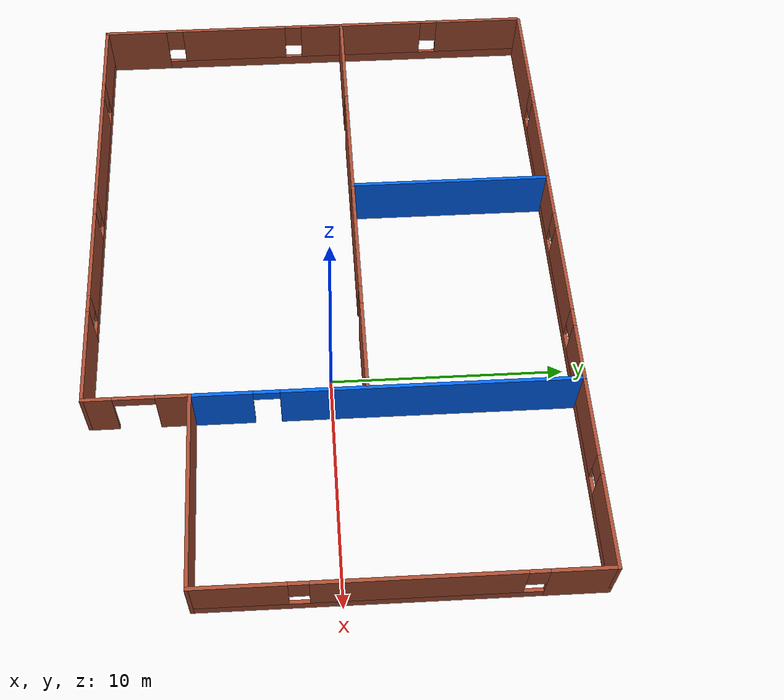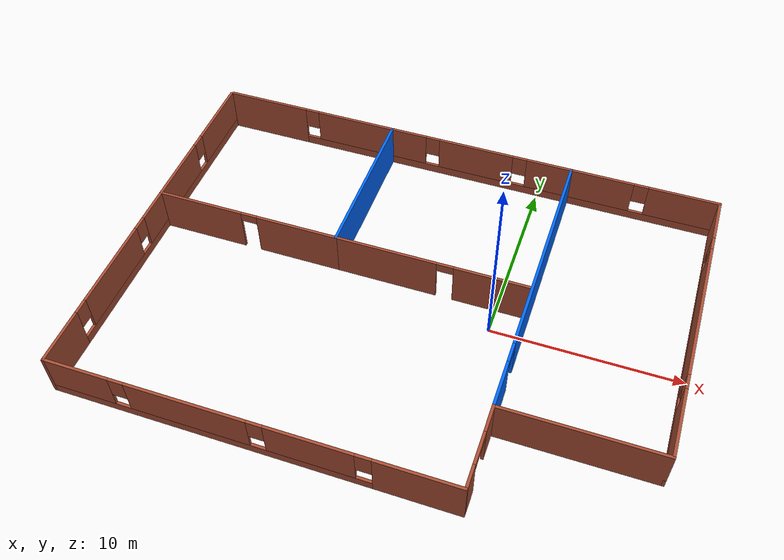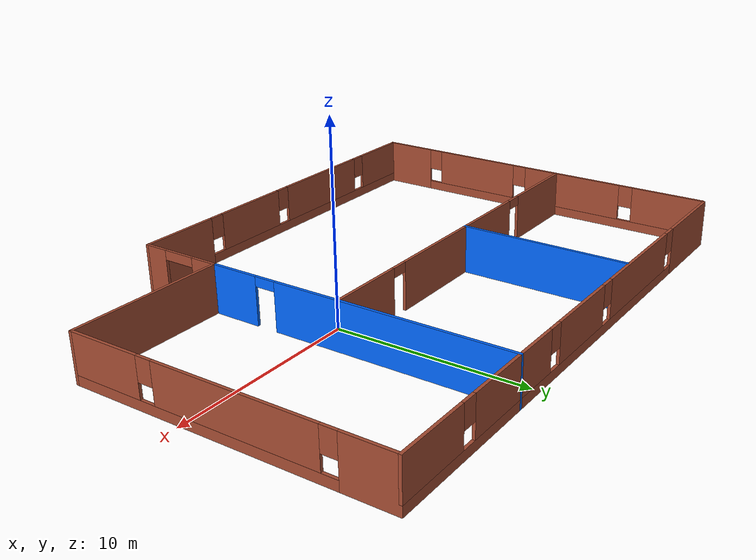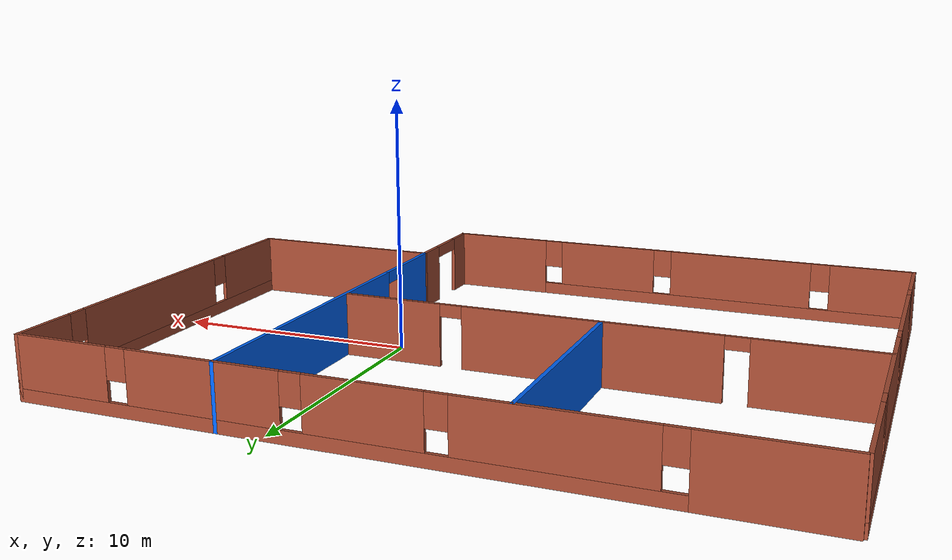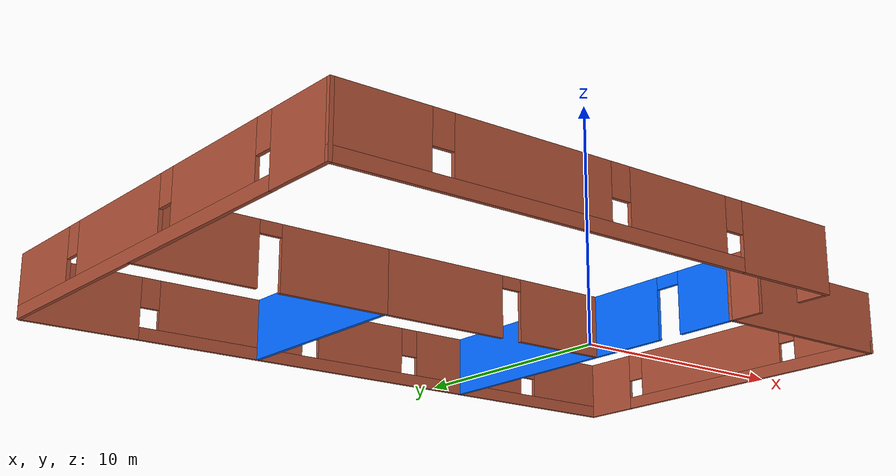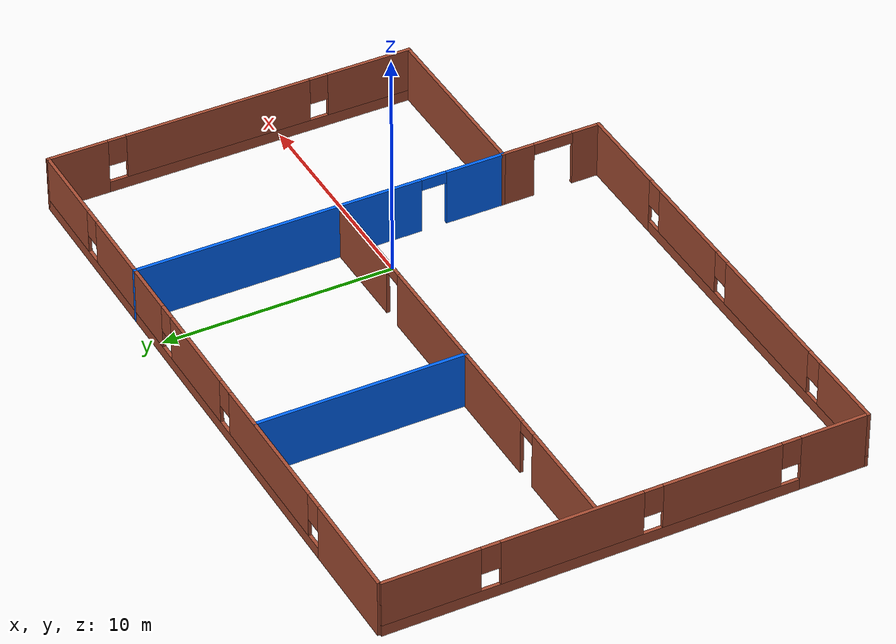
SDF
<?xml version='1.0'?>
<sdf version='1.6'>
  <model name='building'>
    <pose frame=''>-4.55811 0.061328 0 0 -0 0</pose>
    <link name='Wall_13'>
      <pose frame=''>0.05 10.225 0 0 -0 0</pose>
      <visual name='Wall_13_Visual_0'>
        <pose frame=''>-11.9914 0 1.25 0 -0 0</pose>
        <geometry>
          <box>
            <size>4.7672 0.15 2.5</size>
          </box>
        </geometry>
        <material>
          <script>
            <uri>file://media/materials/scripts/gazebo.material</uri>
            <name>Gazebo/Bricks</name>
          </script>
          <ambient>1 1 1 1</ambient>
        </material>
        <meta>
          <layer>0</layer>
        </meta>
      </visual>
      <collision name='Wall_13_Collision_0'>
        <geometry>
          <box>
            <size>4.7672 0.15 2.5</size>
          </box>
        </geometry>
        <pose frame=''>-11.9914 0 1.25 0 -0 0</pose>
      </collision>
      <visual name='Wall_13_Visual_1'>
        <pose frame=''>2.3836 0 0.25 0 -0 0</pose>
        <geometry>
          <box>
            <size>23.9828 0.15 0.5</size>
          </box>
        </geometry>
        <material>
          <script>
            <uri>file://media/materials/scripts/gazebo.material</uri>
            <name>Gazebo/Bricks</name>
          </script>
          <ambient>1 1 1 1</ambient>
        </material>
        <meta>
          <layer>0</layer>
        </meta>
      </visual>
      <collision name='Wall_13_Collision_1'>
        <geometry>
          <box>
            <size>23.9828 0.15 0.5</size>
          </box>
        </geometry>
        <pose frame=''>2.3836 0 0.25 0 -0 0</pose>
      </collision>
      <visual name='Wall_13_Visual_2'>
        <pose frame=''>-5.50611 0 1.5 0 -0 0</pose>
        <geometry>
          <box>
            <size>6.60337 0.15 2</size>
          </box>
        </geometry>
        <material>
          <script>
            <uri>file://media/materials/scripts/gazebo.material</uri>
            <name>Gazebo/Bricks</name>
          </script>
          <ambient>1 1 1 1</ambient>
        </material>
        <meta>
          <layer>0</layer>
        </meta>
      </visual>
      <collision name='Wall_13_Collision_2'>
        <geometry>
          <box>
            <size>6.60337 0.15 2</size>
          </box>
        </geometry>
        <pose frame=''>-5.50611 0 1.5 0 -0 0</pose>
      </collision>
      <visual name='Wall_13_Visual_3'>
        <pose frame=''>0.744274 0 1.5 0 -0 0</pose>
        <geometry>
          <box>
            <size>4.2974 0.15 2</size>
          </box>
        </geometry>
        <material>
          <script>
            <uri>file://media/materials/scripts/gazebo.material</uri>
            <name>Gazebo/Bricks</name>
          </script>
          <ambient>1 1 1 1</ambient>
        </material>
        <meta>
          <layer>0</layer>
        </meta>
      </visual>
      <collision name='Wall_13_Collision_3'>
        <geometry>
          <box>
            <size>4.2974 0.15 2</size>
          </box>
        </geometry>
        <pose frame=''>0.744274 0 1.5 0 -0 0</pose>
      </collision>
      <visual name='Wall_13_Visual_4'>
        <pose frame=''>6.69124 0 1.5 0 -0 0</pose>
        <geometry>
          <box>
            <size>5.99654 0.15 2</size>
          </box>
        </geometry>
        <material>
          <script>
            <uri>file://media/materials/scripts/gazebo.material</uri>
            <name>Gazebo/Bricks</name>
          </script>
          <ambient>1 1 1 1</ambient>
        </material>
        <meta>
          <layer>0</layer>
        </meta>
      </visual>
      <collision name='Wall_13_Collision_4'>
        <geometry>
          <box>
            <size>5.99654 0.15 2</size>
          </box>
        </geometry>
        <pose frame=''>6.69124 0 1.5 0 -0 0</pose>
      </collision>
      <visual name='Wall_13_Visual_5'>
        <pose frame=''>12.4323 0 1.5 0 -0 0</pose>
        <geometry>
          <box>
            <size>3.88549 0.15 2</size>
          </box>
        </geometry>
        <material>
          <script>
            <uri>file://media/materials/scripts/gazebo.material</uri>
            <name>Gazebo/Bricks</name>
          </script>
          <ambient>1 1 1 1</ambient>
        </material>
        <meta>
          <layer>0</layer>
        </meta>
      </visual>
      <collision name='Wall_13_Collision_5'>
        <geometry>
          <box>
            <size>3.88549 0.15 2</size>
          </box>
        </geometry>
        <pose frame=''>12.4323 0 1.5 0 -0 0</pose>
      </collision>
      <visual name='Wall_13_Visual_6'>
        <pose frame=''>-9.2078 0 1.9 0 -0 0</pose>
        <geometry>
          <box>
            <size>0.8 0.15 1.2</size>
          </box>
        </geometry>
        <material>
          <script>
            <uri>file://media/materials/scripts/gazebo.material</uri>
            <name>Gazebo/Bricks</name>
          </script>
          <ambient>1 1 1 1</ambient>
        </material>
        <meta>
          <layer>0</layer>
        </meta>
      </visual>
      <collision name='Wall_13_Collision_6'>
        <geometry>
          <box>
            <size>0.8 0.15 1.2</size>
          </box>
        </geometry>
        <pose frame=''>-9.2078 0 1.9 0 -0 0</pose>
      </collision>
      <visual name='Wall_13_Visual_7'>
        <pose frame=''>-1.80443 0 1.9 0 -0 0</pose>
        <geometry>
          <box>
            <size>0.8 0.15 1.2</size>
          </box>
        </geometry>
        <material>
          <script>
            <uri>file://media/materials/scripts/gazebo.material</uri>
            <name>Gazebo/Bricks</name>
          </script>
          <ambient>1 1 1 1</ambient>
        </material>
        <meta>
          <layer>0</layer>
        </meta>
      </visual>
      <collision name='Wall_13_Collision_7'>
        <geometry>
          <box>
            <size>0.8 0.15 1.2</size>
          </box>
        </geometry>
        <pose frame=''>-1.80443 0 1.9 0 -0 0</pose>
      </collision>
      <visual name='Wall_13_Visual_8'>
        <pose frame=''>3.29298 0 1.9 0 -0 0</pose>
        <geometry>
          <box>
            <size>0.8 0.15 1.2</size>
          </box>
        </geometry>
        <material>
          <script>
            <uri>file://media/materials/scripts/gazebo.material</uri>
            <name>Gazebo/Bricks</name>
          </script>
          <ambient>1 1 1 1</ambient>
        </material>
        <meta>
          <layer>0</layer>
        </meta>
      </visual>
      <collision name='Wall_13_Collision_8'>
        <geometry>
          <box>
            <size>0.8 0.15 1.2</size>
          </box>
        </geometry>
        <pose frame=''>3.29298 0 1.9 0 -0 0</pose>
      </collision>
      <visual name='Wall_13_Visual_9'>
        <pose frame=''>10.0895 0 1.9 0 -0 0</pose>
        <geometry>
          <box>
            <size>0.8 0.15 1.2</size>
          </box>
        </geometry>
        <material>
          <script>
            <uri>file://media/materials/scripts/gazebo.material</uri>
            <name>Gazebo/Bricks</name>
          </script>
          <ambient>1 1 1 1</ambient>
        </material>
        <meta>
          <layer>0</layer>
        </meta>
      </visual>
      <collision name='Wall_13_Collision_9'>
        <geometry>
          <box>
            <size>0.8 0.15 1.2</size>
          </box>
        </geometry>
        <pose frame=''>10.0895 0 1.9 0 -0 0</pose>
      </collision>
    </link>
    <link name='Wall_14'>
      <pose frame=''>14.35 2.175 0 0 -0 -1.5708</pose>
      <visual name='Wall_14_Visual_0'>
        <pose frame=''>-6.80038 0 1.25 0 -0 0</pose>
        <geometry>
          <box>
            <size>2.64924 0.15 2.5</size>
          </box>
        </geometry>
        <material>
          <script>
            <uri>file://media/materials/scripts/gazebo.material</uri>
            <name>Gazebo/Bricks</name>
          </script>
          <ambient>1 1 1 1</ambient>
        </material>
        <meta>
          <layer>0</layer>
        </meta>
      </visual>
      <collision name='Wall_14_Collision_0'>
        <geometry>
          <box>
            <size>2.64924 0.15 2.5</size>
          </box>
        </geometry>
        <pose frame=''>-6.80038 0 1.25 0 -0 0</pose>
      </collision>
      <visual name='Wall_14_Visual_1'>
        <pose frame=''>1.32462 0 0.25 0 -0 0</pose>
        <geometry>
          <box>
            <size>13.6008 0.15 0.5</size>
          </box>
        </geometry>
        <material>
          <script>
            <uri>file://media/materials/scripts/gazebo.material</uri>
            <name>Gazebo/Bricks</name>
          </script>
          <ambient>1 1 1 1</ambient>
        </material>
        <meta>
          <layer>0</layer>
        </meta>
      </visual>
      <collision name='Wall_14_Collision_1'>
        <geometry>
          <box>
            <size>13.6008 0.15 0.5</size>
          </box>
        </geometry>
        <pose frame=''>1.32462 0 0.25 0 -0 0</pose>
      </collision>
      <visual name='Wall_14_Visual_2'>
        <pose frame=''>-0.585188 0 1.5 0 -0 0</pose>
        <geometry>
          <box>
            <size>8.18114 0.15 2</size>
          </box>
        </geometry>
        <material>
          <script>
            <uri>file://media/materials/scripts/gazebo.material</uri>
            <name>Gazebo/Bricks</name>
          </script>
          <ambient>1 1 1 1</ambient>
        </material>
        <meta>
          <layer>0</layer>
        </meta>
      </visual>
      <collision name='Wall_14_Collision_2'>
        <geometry>
          <box>
            <size>8.18114 0.15 2</size>
          </box>
        </geometry>
        <pose frame=''>-0.585188 0 1.5 0 -0 0</pose>
      </collision>
      <visual name='Wall_14_Visual_3'>
        <pose frame=''>6.21519 0 1.5 0 -0 0</pose>
        <geometry>
          <box>
            <size>3.81962 0.15 2</size>
          </box>
        </geometry>
        <material>
          <script>
            <uri>file://media/materials/scripts/gazebo.material</uri>
            <name>Gazebo/Bricks</name>
          </script>
          <ambient>1 1 1 1</ambient>
        </material>
        <meta>
          <layer>0</layer>
        </meta>
      </visual>
      <collision name='Wall_14_Collision_3'>
        <geometry>
          <box>
            <size>3.81962 0.15 2</size>
          </box>
        </geometry>
        <pose frame=''>6.21519 0 1.5 0 -0 0</pose>
      </collision>
      <visual name='Wall_14_Visual_4'>
        <pose frame=''>-5.07576 0 1.9 0 -0 0</pose>
        <geometry>
          <box>
            <size>0.8 0.15 1.2</size>
          </box>
        </geometry>
        <material>
          <script>
            <uri>file://media/materials/scripts/gazebo.material</uri>
            <name>Gazebo/Bricks</name>
          </script>
          <ambient>1 1 1 1</ambient>
        </material>
        <meta>
          <layer>0</layer>
        </meta>
      </visual>
      <collision name='Wall_14_Collision_4'>
        <geometry>
          <box>
            <size>0.8 0.15 1.2</size>
          </box>
        </geometry>
        <pose frame=''>-5.07576 0 1.9 0 -0 0</pose>
      </collision>
      <visual name='Wall_14_Visual_5'>
        <pose frame=''>3.90538 0 1.9 0 -0 0</pose>
        <geometry>
          <box>
            <size>0.8 0.15 1.2</size>
          </box>
        </geometry>
        <material>
          <script>
            <uri>file://media/materials/scripts/gazebo.material</uri>
            <name>Gazebo/Bricks</name>
          </script>
          <ambient>1 1 1 1</ambient>
        </material>
        <meta>
          <layer>0</layer>
        </meta>
      </visual>
      <collision name='Wall_14_Collision_5'>
        <geometry>
          <box>
            <size>0.8 0.15 1.2</size>
          </box>
        </geometry>
        <pose frame=''>3.90538 0 1.9 0 -0 0</pose>
      </collision>
    </link>
    <link name='Wall_15'>
      <collision name='Wall_15_Collision'>
        <geometry>
          <box>
            <size>8.25 0.15 2.5</size>
          </box>
        </geometry>
        <pose frame=''>0 0 1.25 0 -0 0</pose>
      </collision>
      <visual name='Wall_15_Visual'>
        <pose frame=''>0 0 1.25 0 -0 0</pose>
        <geometry>
          <box>
            <size>8.25 0.15 2.5</size>
          </box>
        </geometry>
        <material>
          <script>
            <uri>file://media/materials/scripts/gazebo.material</uri>
            <name>Gazebo/Bricks</name>
          </script>
          <ambient>1 1 1 1</ambient>
        </material>
        <meta>
          <layer>0</layer>
        </meta>
      </visual>
      <pose frame=''>10.3 -5.875 0 0 -0 3.14159</pose>
    </link>
    <link name='Wall_16'>
      <pose frame=''>6.25 -8.05 0 0 -0 -1.5708</pose>
      <visual name='Wall_16_Visual_0'>
        <pose frame=''>-1.51647 0 1.25 0 -0 0</pose>
        <geometry>
          <box>
            <size>1.46706 0.15 2.5</size>
          </box>
        </geometry>
        <material>
          <script>
            <uri>file://media/materials/scripts/gazebo.material</uri>
            <name>Gazebo/Bricks</name>
          </script>
          <ambient>1 1 1 1</ambient>
        </material>
        <meta>
          <layer>0</layer>
        </meta>
      </visual>
      <collision name='Wall_16_Collision_0'>
        <geometry>
          <box>
            <size>1.46706 0.15 2.5</size>
          </box>
        </geometry>
        <pose frame=''>-1.51647 0 1.25 0 -0 0</pose>
      </collision>
      <visual name='Wall_16_Visual_1'>
        <pose frame=''>1.59657 0 1.25 0 -0 0</pose>
        <geometry>
          <box>
            <size>1.30685 0.15 2.5</size>
          </box>
        </geometry>
        <material>
          <script>
            <uri>file://media/materials/scripts/gazebo.material</uri>
            <name>Gazebo/Bricks</name>
          </script>
          <ambient>1 1 1 1</ambient>
        </material>
        <meta>
          <layer>0</layer>
        </meta>
      </visual>
      <collision name='Wall_16_Collision_1'>
        <geometry>
          <box>
            <size>1.30685 0.15 2.5</size>
          </box>
        </geometry>
        <pose frame=''>1.59657 0 1.25 0 -0 0</pose>
      </collision>
      <visual name='Wall_16_Visual_2'>
        <pose frame=''>0.080105 0 2.25 0 -0 0</pose>
        <geometry>
          <box>
            <size>1.72609 0.15 0.5</size>
          </box>
        </geometry>
        <material>
          <script>
            <uri>file://media/materials/scripts/gazebo.material</uri>
            <name>Gazebo/Bricks</name>
          </script>
          <ambient>1 1 1 1</ambient>
        </material>
        <meta>
          <layer>0</layer>
        </meta>
      </visual>
      <collision name='Wall_16_Collision_2'>
        <geometry>
          <box>
            <size>1.72609 0.15 0.5</size>
          </box>
        </geometry>
        <pose frame=''>0.080105 0 2.25 0 -0 0</pose>
      </collision>
    </link>
    <link name='Wall_17'>
      <pose frame=''>-4.05 -10.225 0 0 -0 3.14159</pose>
      <visual name='Wall_17_Visual_0'>
        <pose frame=''>-8.21419 0 1.25 0 -0 0</pose>
        <geometry>
          <box>
            <size>4.32162 0.15 2.5</size>
          </box>
        </geometry>
        <material>
          <script>
            <uri>file://media/materials/scripts/gazebo.material</uri>
            <name>Gazebo/Bricks</name>
          </script>
          <ambient>1 1 1 1</ambient>
        </material>
        <meta>
          <layer>0</layer>
        </meta>
      </visual>
      <collision name='Wall_17_Collision_0'>
        <geometry>
          <box>
            <size>4.32162 0.15 2.5</size>
          </box>
        </geometry>
        <pose frame=''>-8.21419 0 1.25 0 -0 0</pose>
      </collision>
      <visual name='Wall_17_Visual_1'>
        <pose frame=''>2.16081 0 0.25 0 -0 0</pose>
        <geometry>
          <box>
            <size>16.4284 0.15 0.5</size>
          </box>
        </geometry>
        <material>
          <script>
            <uri>file://media/materials/scripts/gazebo.material</uri>
            <name>Gazebo/Bricks</name>
          </script>
          <ambient>1 1 1 1</ambient>
        </material>
        <meta>
          <layer>0</layer>
        </meta>
      </visual>
      <collision name='Wall_17_Collision_1'>
        <geometry>
          <box>
            <size>16.4284 0.15 0.5</size>
          </box>
        </geometry>
        <pose frame=''>2.16081 0 0.25 0 -0 0</pose>
      </collision>
      <visual name='Wall_17_Visual_2'>
        <pose frame=''>-3.06423 0 1.5 0 -0 0</pose>
        <geometry>
          <box>
            <size>4.37831 0.15 2</size>
          </box>
        </geometry>
        <material>
          <script>
            <uri>file://media/materials/scripts/gazebo.material</uri>
            <name>Gazebo/Bricks</name>
          </script>
          <ambient>1 1 1 1</ambient>
        </material>
        <meta>
          <layer>0</layer>
        </meta>
      </visual>
      <collision name='Wall_17_Collision_2'>
        <geometry>
          <box>
            <size>4.37831 0.15 2</size>
          </box>
        </geometry>
        <pose frame=''>-3.06423 0 1.5 0 -0 0</pose>
      </collision>
      <visual name='Wall_17_Visual_3'>
        <pose frame=''>3.00411 0 1.5 0 -0 0</pose>
        <geometry>
          <box>
            <size>6.15836 0.15 2</size>
          </box>
        </geometry>
        <material>
          <script>
            <uri>file://media/materials/scripts/gazebo.material</uri>
            <name>Gazebo/Bricks</name>
          </script>
          <ambient>1 1 1 1</ambient>
        </material>
        <meta>
          <layer>0</layer>
        </meta>
      </visual>
      <collision name='Wall_17_Collision_3'>
        <geometry>
          <box>
            <size>6.15836 0.15 2</size>
          </box>
        </geometry>
        <pose frame=''>3.00411 0 1.5 0 -0 0</pose>
      </collision>
      <visual name='Wall_17_Visual_4'>
        <pose frame=''>8.62914 0 1.5 0 -0 0</pose>
        <geometry>
          <box>
            <size>3.49171 0.15 2</size>
          </box>
        </geometry>
        <material>
          <script>
            <uri>file://media/materials/scripts/gazebo.material</uri>
            <name>Gazebo/Bricks</name>
          </script>
          <ambient>1 1 1 1</ambient>
        </material>
        <meta>
          <layer>0</layer>
        </meta>
      </visual>
      <collision name='Wall_17_Collision_4'>
        <geometry>
          <box>
            <size>3.49171 0.15 2</size>
          </box>
        </geometry>
        <pose frame=''>8.62914 0 1.5 0 -0 0</pose>
      </collision>
      <visual name='Wall_17_Visual_5'>
        <pose frame=''>-5.65339 0 1.9 0 -0 0</pose>
        <geometry>
          <box>
            <size>0.8 0.15 1.2</size>
          </box>
        </geometry>
        <material>
          <script>
            <uri>file://media/materials/scripts/gazebo.material</uri>
            <name>Gazebo/Bricks</name>
          </script>
          <ambient>1 1 1 1</ambient>
        </material>
        <meta>
          <layer>0</layer>
        </meta>
      </visual>
      <collision name='Wall_17_Collision_5'>
        <geometry>
          <box>
            <size>0.8 0.15 1.2</size>
          </box>
        </geometry>
        <pose frame=''>-5.65339 0 1.9 0 -0 0</pose>
      </collision>
      <visual name='Wall_17_Visual_6'>
        <pose frame=''>-0.475071 0 1.9 0 -0 0</pose>
        <geometry>
          <box>
            <size>0.8 0.15 1.2</size>
          </box>
        </geometry>
        <material>
          <script>
            <uri>file://media/materials/scripts/gazebo.material</uri>
            <name>Gazebo/Bricks</name>
          </script>
          <ambient>1 1 1 1</ambient>
        </material>
        <meta>
          <layer>0</layer>
        </meta>
      </visual>
      <collision name='Wall_17_Collision_6'>
        <geometry>
          <box>
            <size>0.8 0.15 1.2</size>
          </box>
        </geometry>
        <pose frame=''>-0.475071 0 1.9 0 -0 0</pose>
      </collision>
      <visual name='Wall_17_Visual_7'>
        <pose frame=''>6.48329 0 1.9 0 -0 0</pose>
        <geometry>
          <box>
            <size>0.8 0.15 1.2</size>
          </box>
        </geometry>
        <material>
          <script>
            <uri>file://media/materials/scripts/gazebo.material</uri>
            <name>Gazebo/Bricks</name>
          </script>
          <ambient>1 1 1 1</ambient>
        </material>
        <meta>
          <layer>0</layer>
        </meta>
      </visual>
      <collision name='Wall_17_Collision_7'>
        <geometry>
          <box>
            <size>0.8 0.15 1.2</size>
          </box>
        </geometry>
        <pose frame=''>6.48329 0 1.9 0 -0 0</pose>
      </collision>
    </link>
    <link name='Wall_18'>
      <pose frame=''>-14.35 -0.05 0 0 -0 1.5708</pose>
      <visual name='Wall_18_Visual_0'>
        <pose frame=''>-8.75435 0 1.25 0 -0 0</pose>
        <geometry>
          <box>
            <size>2.99131 0.15 2.5</size>
          </box>
        </geometry>
        <material>
          <script>
            <uri>file://media/materials/scripts/gazebo.material</uri>
            <name>Gazebo/Bricks</name>
          </script>
          <ambient>1 1 1 1</ambient>
        </material>
        <meta>
          <layer>0</layer>
        </meta>
      </visual>
      <collision name='Wall_18_Collision_0'>
        <geometry>
          <box>
            <size>2.99131 0.15 2.5</size>
          </box>
        </geometry>
        <pose frame=''>-8.75435 0 1.25 0 -0 0</pose>
      </collision>
      <visual name='Wall_18_Visual_1'>
        <pose frame=''>1.49565 0 0.25 0 -0 0</pose>
        <geometry>
          <box>
            <size>17.5087 0.15 0.5</size>
          </box>
        </geometry>
        <material>
          <script>
            <uri>file://media/materials/scripts/gazebo.material</uri>
            <name>Gazebo/Bricks</name>
          </script>
          <ambient>1 1 1 1</ambient>
        </material>
        <meta>
          <layer>0</layer>
        </meta>
      </visual>
      <collision name='Wall_18_Collision_1'>
        <geometry>
          <box>
            <size>17.5087 0.15 0.5</size>
          </box>
        </geometry>
        <pose frame=''>1.49565 0 0.25 0 -0 0</pose>
      </collision>
      <visual name='Wall_18_Visual_2'>
        <pose frame=''>-3.92566 0 1.5 0 -0 0</pose>
        <geometry>
          <box>
            <size>5.06606 0.15 2</size>
          </box>
        </geometry>
        <material>
          <script>
            <uri>file://media/materials/scripts/gazebo.material</uri>
            <name>Gazebo/Bricks</name>
          </script>
          <ambient>1 1 1 1</ambient>
        </material>
        <meta>
          <layer>0</layer>
        </meta>
      </visual>
      <collision name='Wall_18_Collision_2'>
        <geometry>
          <box>
            <size>5.06606 0.15 2</size>
          </box>
        </geometry>
        <pose frame=''>-3.92566 0 1.5 0 -0 0</pose>
      </collision>
      <visual name='Wall_18_Visual_3'>
        <pose frame=''>2.3854 0 1.5 0 -0 0</pose>
        <geometry>
          <box>
            <size>5.95608 0.15 2</size>
          </box>
        </geometry>
        <material>
          <script>
            <uri>file://media/materials/scripts/gazebo.material</uri>
            <name>Gazebo/Bricks</name>
          </script>
          <ambient>1 1 1 1</ambient>
        </material>
        <meta>
          <layer>0</layer>
        </meta>
      </visual>
      <collision name='Wall_18_Collision_3'>
        <geometry>
          <box>
            <size>5.95608 0.15 2</size>
          </box>
        </geometry>
        <pose frame=''>2.3854 0 1.5 0 -0 0</pose>
      </collision>
      <visual name='Wall_18_Visual_4'>
        <pose frame=''>8.20672 0 1.5 0 -0 0</pose>
        <geometry>
          <box>
            <size>4.08655 0.15 2</size>
          </box>
        </geometry>
        <material>
          <script>
            <uri>file://media/materials/scripts/gazebo.material</uri>
            <name>Gazebo/Bricks</name>
          </script>
          <ambient>1 1 1 1</ambient>
        </material>
        <meta>
          <layer>0</layer>
        </meta>
      </visual>
      <collision name='Wall_18_Collision_4'>
        <geometry>
          <box>
            <size>4.08655 0.15 2</size>
          </box>
        </geometry>
        <pose frame=''>8.20672 0 1.5 0 -0 0</pose>
      </collision>
      <visual name='Wall_18_Visual_5'>
        <pose frame=''>-6.85869 0 1.9 0 -0 0</pose>
        <geometry>
          <box>
            <size>0.8 0.15 1.2</size>
          </box>
        </geometry>
        <material>
          <script>
            <uri>file://media/materials/scripts/gazebo.material</uri>
            <name>Gazebo/Bricks</name>
          </script>
          <ambient>1 1 1 1</ambient>
        </material>
        <meta>
          <layer>0</layer>
        </meta>
      </visual>
      <collision name='Wall_18_Collision_5'>
        <geometry>
          <box>
            <size>0.8 0.15 1.2</size>
          </box>
        </geometry>
        <pose frame=''>-6.85869 0 1.9 0 -0 0</pose>
      </collision>
      <visual name='Wall_18_Visual_6'>
        <pose frame=''>-0.992636 0 1.9 0 -0 0</pose>
        <geometry>
          <box>
            <size>0.8 0.15 1.2</size>
          </box>
        </geometry>
        <material>
          <script>
            <uri>file://media/materials/scripts/gazebo.material</uri>
            <name>Gazebo/Bricks</name>
          </script>
          <ambient>1 1 1 1</ambient>
        </material>
        <meta>
          <layer>0</layer>
        </meta>
      </visual>
      <collision name='Wall_18_Collision_6'>
        <geometry>
          <box>
            <size>0.8 0.15 1.2</size>
          </box>
        </geometry>
        <pose frame=''>-0.992636 0 1.9 0 -0 0</pose>
      </collision>
      <visual name='Wall_18_Visual_7'>
        <pose frame=''>5.76344 0 1.9 0 -0 0</pose>
        <geometry>
          <box>
            <size>0.8 0.15 1.2</size>
          </box>
        </geometry>
        <material>
          <script>
            <uri>file://media/materials/scripts/gazebo.material</uri>
            <name>Gazebo/Bricks</name>
          </script>
          <ambient>1 1 1 1</ambient>
        </material>
        <meta>
          <layer>0</layer>
        </meta>
      </visual>
      <collision name='Wall_18_Collision_7'>
        <geometry>
          <box>
            <size>0.8 0.15 1.2</size>
          </box>
        </geometry>
        <pose frame=''>5.76344 0 1.9 0 -0 0</pose>
      </collision>
    </link>
    <link name='Wall_20'>
      <pose frame=''>6.25 2.175 0 0 -0 1.5708</pose>
      <visual name='Wall_20_Visual_0'>
        <pose frame=''>-6.80543 0 1.25 0 -0 0</pose>
        <geometry>
          <box>
            <size>2.63914 0.15 2.5</size>
          </box>
        </geometry>
        <material>
          <script>
            <uri>file://media/materials/scripts/gazebo.material</uri>
            <name>Gazebo/Grey</name>
          </script>
          <ambient>0 0.403922 0.992157 1</ambient>
        </material>
        <meta>
          <layer>0</layer>
        </meta>
      </visual>
      <collision name='Wall_20_Collision_0'>
        <geometry>
          <box>
            <size>2.63914 0.15 2.5</size>
          </box>
        </geometry>
        <pose frame=''>-6.80543 0 1.25 0 -0 0</pose>
      </collision>
      <visual name='Wall_20_Visual_1'>
        <pose frame=''>1.86957 0 1.25 0 -0 0</pose>
        <geometry>
          <box>
            <size>12.5109 0.15 2.5</size>
          </box>
        </geometry>
        <material>
          <script>
            <uri>file://media/materials/scripts/gazebo.material</uri>
            <name>Gazebo/Grey</name>
          </script>
          <ambient>0 0.403922 0.992157 1</ambient>
        </material>
        <meta>
          <layer>0</layer>
        </meta>
      </visual>
      <collision name='Wall_20_Collision_1'>
        <geometry>
          <box>
            <size>12.5109 0.15 2.5</size>
          </box>
        </geometry>
        <pose frame=''>1.86957 0 1.25 0 -0 0</pose>
      </collision>
      <visual name='Wall_20_Visual_2'>
        <pose frame=''>-4.93586 0 2.25 0 -0 0</pose>
        <geometry>
          <box>
            <size>1.1 0.15 0.5</size>
          </box>
        </geometry>
        <material>
          <script>
            <uri>file://media/materials/scripts/gazebo.material</uri>
            <name>Gazebo/Grey</name>
          </script>
          <ambient>0 0.403922 0.992157 1</ambient>
        </material>
        <meta>
          <layer>0</layer>
        </meta>
      </visual>
      <collision name='Wall_20_Collision_2'>
        <geometry>
          <box>
            <size>1.1 0.15 0.5</size>
          </box>
        </geometry>
        <pose frame=''>-4.93586 0 2.25 0 -0 0</pose>
      </collision>
    </link>
    <link name='Wall_28'>
      <collision name='Wall_28_Collision'>
        <geometry>
          <box>
            <size>9 0.15 2.5</size>
          </box>
        </geometry>
        <pose frame=''>0 0 1.25 0 -0 0</pose>
      </collision>
      <visual name='Wall_28_Visual'>
        <pose frame=''>0 0 1.25 0 -0 0</pose>
        <geometry>
          <box>
            <size>9 0.15 2.5</size>
          </box>
        </geometry>
        <material>
          <script>
            <uri>file://media/materials/scripts/gazebo.material</uri>
            <name>Gazebo/Grey</name>
          </script>
          <ambient>0 0.403922 0.992157 1</ambient>
        </material>
        <meta>
          <layer>0</layer>
        </meta>
      </visual>
      <pose frame=''>-4.22222 5.77902 0 0 -0 -1.5708</pose>
    </link>
    <link name='Wall_29'>
      <pose frame=''>-9.27222 1.35401 0 0 -0 3.14159</pose>
      <visual name='Wall_29_Visual_0'>
        <pose frame=''>-2.84471 0 1.25 0 -0 0</pose>
        <geometry>
          <box>
            <size>4.56058 0.15 2.5</size>
          </box>
        </geometry>
        <material>
          <script>
            <uri>file://media/materials/scripts/gazebo.material</uri>
            <name>Gazebo/Bricks</name>
          </script>
          <ambient>0.435294 0.796078 0.67451 1</ambient>
        </material>
        <meta>
          <layer>0</layer>
        </meta>
      </visual>
      <collision name='Wall_29_Collision_0'>
        <geometry>
          <box>
            <size>4.56058 0.15 2.5</size>
          </box>
        </geometry>
        <pose frame=''>-2.84471 0 1.25 0 -0 0</pose>
      </collision>
      <visual name='Wall_29_Visual_1'>
        <pose frame=''>2.73029 0 1.25 0 -0 0</pose>
        <geometry>
          <box>
            <size>4.78942 0.15 2.5</size>
          </box>
        </geometry>
        <material>
          <script>
            <uri>file://media/materials/scripts/gazebo.material</uri>
            <name>Gazebo/Bricks</name>
          </script>
          <ambient>0.435294 0.796078 0.67451 1</ambient>
        </material>
        <meta>
          <layer>0</layer>
        </meta>
      </visual>
      <collision name='Wall_29_Collision_1'>
        <geometry>
          <box>
            <size>4.78942 0.15 2.5</size>
          </box>
        </geometry>
        <pose frame=''>2.73029 0 1.25 0 -0 0</pose>
      </collision>
      <visual name='Wall_29_Visual_2'>
        <pose frame=''>-0.11442 0 2.25 0 -0 0</pose>
        <geometry>
          <box>
            <size>0.9 0.15 0.5</size>
          </box>
        </geometry>
        <material>
          <script>
            <uri>file://media/materials/scripts/gazebo.material</uri>
            <name>Gazebo/Bricks</name>
          </script>
          <ambient>0.435294 0.796078 0.67451 1</ambient>
        </material>
        <meta>
          <layer>0</layer>
        </meta>
      </visual>
      <collision name='Wall_29_Collision_2'>
        <geometry>
          <box>
            <size>0.9 0.15 0.5</size>
          </box>
        </geometry>
        <pose frame=''>-0.11442 0 2.25 0 -0 0</pose>
      </collision>
    </link>
    <link name='Wall_31'>
      <pose frame=''>0.952782 1.35401 0 0 -0 0</pose>
      <visual name='Wall_31_Visual_0'>
        <pose frame=''>-2.46401 0 1.25 0 -0 0</pose>
        <geometry>
          <box>
            <size>5.57197 0.15 2.5</size>
          </box>
        </geometry>
        <material>
          <script>
            <uri>file://media/materials/scripts/gazebo.material</uri>
            <name>Gazebo/Bricks</name>
          </script>
          <ambient>0.435294 0.796078 0.67451 1</ambient>
        </material>
        <meta>
          <layer>0</layer>
        </meta>
      </visual>
      <collision name='Wall_31_Collision_0'>
        <geometry>
          <box>
            <size>5.57197 0.15 2.5</size>
          </box>
        </geometry>
        <pose frame=''>-2.46401 0 1.25 0 -0 0</pose>
      </collision>
      <visual name='Wall_31_Visual_1'>
        <pose frame=''>3.23598 0 1.25 0 -0 0</pose>
        <geometry>
          <box>
            <size>4.02803 0.15 2.5</size>
          </box>
        </geometry>
        <material>
          <script>
            <uri>file://media/materials/scripts/gazebo.material</uri>
            <name>Gazebo/Bricks</name>
          </script>
          <ambient>0.435294 0.796078 0.67451 1</ambient>
        </material>
        <meta>
          <layer>0</layer>
        </meta>
      </visual>
      <collision name='Wall_31_Collision_1'>
        <geometry>
          <box>
            <size>4.02803 0.15 2.5</size>
          </box>
        </geometry>
        <pose frame=''>3.23598 0 1.25 0 -0 0</pose>
      </collision>
      <visual name='Wall_31_Visual_2'>
        <pose frame=''>0.77197 0 2.25 0 -0 0</pose>
        <geometry>
          <box>
            <size>0.9 0.15 0.5</size>
          </box>
        </geometry>
        <material>
          <script>
            <uri>file://media/materials/scripts/gazebo.material</uri>
            <name>Gazebo/Bricks</name>
          </script>
          <ambient>0.435294 0.796078 0.67451 1</ambient>
        </material>
        <meta>
          <layer>0</layer>
        </meta>
      </visual>
      <collision name='Wall_31_Collision_2'>
        <geometry>
          <box>
            <size>0.9 0.15 0.5</size>
          </box>
        </geometry>
        <pose frame=''>0.77197 0 2.25 0 -0 0</pose>
      </collision>
    </link>
    <static>1</static>
  </model>
</sdf>
